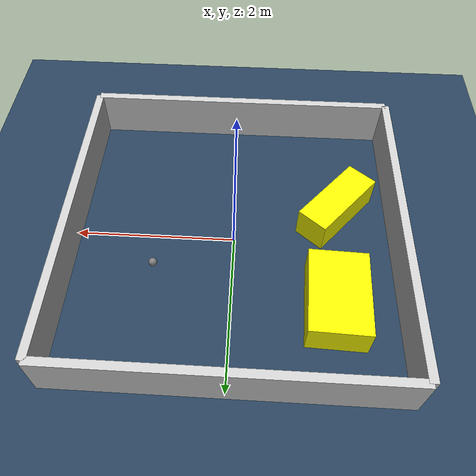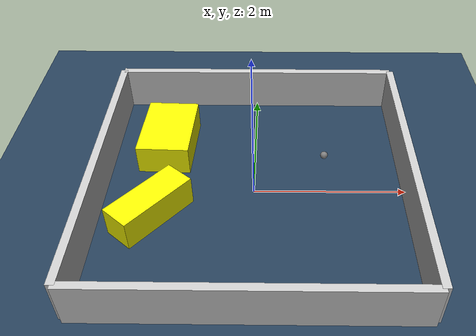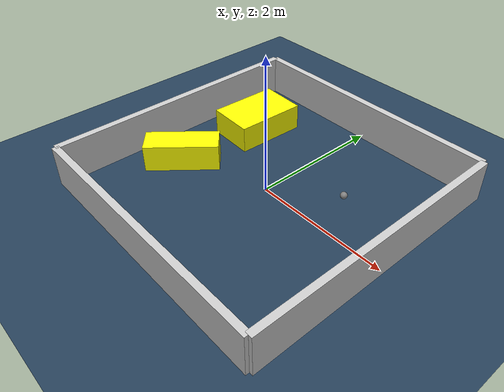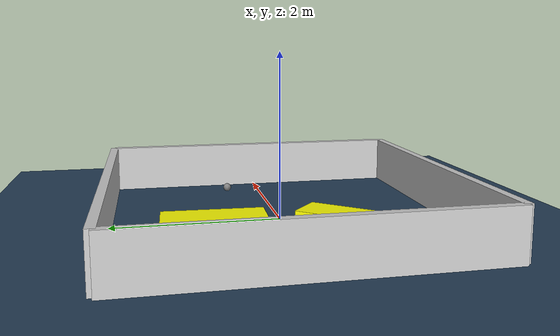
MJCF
<?xml version="1.0" ?>
<mujoco model="generated_environment">
  <option timestep="0.01" integrator="RK4" cone="elliptic"/>
  <default>
    <geom density="1"/>
  </default>
  <asset>
    <texture builtin="gradient" height="3072" rgb1="0.3 0.5 0.7" rgb2="0 0 0" type="skybox" width="512"/>
    <texture builtin="checker" height="300" mark="edge" markrgb="0.8 0.8 0.8" name="groundplane" rgb1="0.2 0.3 0.4" rgb2="0.1 0.2 0.3" type="2d" width="300"/>
    <material name="groundplane" reflectance="0.2" texrepeat="5 5" texture="groundplane" texuniform="true"/>
    <material name="robot" rgba="0.0 1.0 0.0 1"/>
  </asset>
  <worldbody>
    <light dir="0 0 -1" directional="true" pos="0 0 1.5"/>
    <geom condim="4" friction="1.0 0.005 0.001" material="groundplane" name="floor" size="0 0 0.05" type="plane"/>
    <body name="walls">
      <geom name="wall_1" condim="4" pos="-2.0 0.0 0.3" rgba="0.800000011920929 0.800000011920929 0.800000011920929 1.0" size="0.05 2.0 0.3" type="box"/>
      <geom name="wall_2" condim="4" pos="2.0 0.0 0.3" rgba="0.800000011920929 0.800000011920929 0.800000011920929 1.0" size="0.05 2.0 0.3" type="box"/>
      <geom name="wall_3" condim="4" pos="0.0 -2.0 0.3" rgba="0.800000011920929 0.800000011920929 0.800000011920929 1.0" size="2.0 0.05 0.3" type="box"/>
      <geom name="wall_4" condim="4" pos="0.0 2.0 0.3" rgba="0.800000011920929 0.800000011920929 0.800000011920929 1.0" size="2.0 0.05 0.3" type="box"/>
    </body>
    <body name="robot">
      <joint name="joint_x" type="slide" pos="0 0 0" axis="1 0 0"/>
      <joint name="joint_y" type="slide" pos="0 0 0" axis="0 1 0"/>
      <geom name="robot" type="sphere" pos="0.9466066559496924 0.5164034453229451 0.2" size="0.05" mass="5." friction="1.0 0.005 0.0001" condim="4"/>
      <site name="sensor_ball"/>
    </body>
    <body name="obstacle_1_movable">
      <geom name="obstacle_1_movable" condim="4" pos="-1.2829275210521627 -0.4735691432934406 0.2" euler="0 0 49.874002531154964" friction="1.0 0.005 0.001" rgba="1 1 0 1" size="0.5333254294475478 0.20304477126293038 0.2" type="box" mass="0.1"/>
      <joint type="free"/>
    </body>
    <body name="obstacle_2_movable">
      <geom name="obstacle_2_movable" condim="4" pos="-1.2166678590944031 0.8984755330641636 0.2" euler="0 0 177.844391084812" friction="1.0 0.005 0.001" rgba="1 1 0 1" size="0.35223559268541677 0.5311254713333355 0.2" type="box" mass="0.1"/>
      <joint type="free"/>
    </body>
  </worldbody>
  <actuator>
    <motor name="actuator_x" joint="joint_x" gear="1" ctrlrange="-1 1"/>
    <motor name="actuator_y" joint="joint_y" gear="1" ctrlrange="-1 1"/>
  </actuator>
</mujoco>
